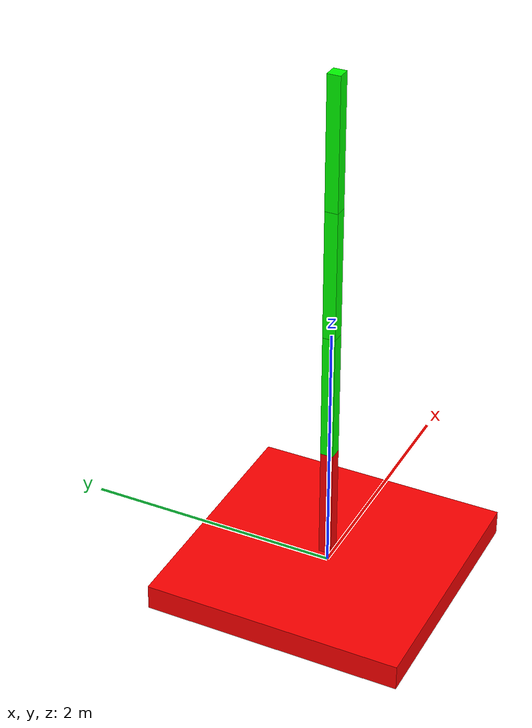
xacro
<?xml version="1.0"?>
<robot name="simple_robot" xmlns:xacro="http://www.ros.org/wiki/xacro">

        <xacro:include filename="$(find robotic_arm)/model/gazebo.xacro" />
        <xacro:include filename="$(find robotic_arm)/model/parameters.xacro" />

        <link name="base_link">
                <visual>
                        <geometry>
                                <box size="${chassis_length} ${chassis_width} ${chassis_height}"/>
                        </geometry>
                        <origin xyz="0 0 0" rpy="0 0 0"/>
                        <material name="red"/>
                </visual>

                <collision>
                        <geometry>
                                <box size="${chassis_length} ${chassis_width} ${chassis_height}"/>
                        </geometry>
                        <origin xyz="0 0 0" rpy="0 0 0"/>
                        <material name="red"/>
                </collision>

                <xacro:chassis_inertia />
        </link>

        <link name="first_arm">
                <visual>
                        <geometry>
                                <box size="${arm_length} ${arm_width} ${arm_height}" />
                        </geometry>
                        <origin xyz="0 0 0" rpy="0 0 0" />
                        <material name="red" />
                </visual>

                <collision>
                        <geometry>
                                <box size="${arm_length} ${arm_width} ${arm_height}" />
                        </geometry>
                        <origin xyz="0 0 0" rpy="0 0 0" />
                        <material name="red"/>
                </collision>

                <xacro:arm_inertia />
        </link>

        <joint name="first_arm_joint" type="revolute">
                <parent link="base_link" />
                <child link="first_arm" />
                <origin xyz="0 0 ${arm_height/2}" rpy="0 0 0"/>
                <axis xyz="0 0 1"/>
                <limit effort="5000" velocity="10" lower="${-pi}" upper="${pi}"/>
                <dynamics damping="1.0" friction="1.0"/>
        </joint>

        <link name="second_arm">
                <visual>
                        <geometry>
                                <box size="${arm_length} ${arm_width} ${arm_height}" />
                        </geometry>
                        <origin xyz="0 0 ${arm_height/2}" rpy="0 0 0" />
                        <material name="green" />
                </visual>

                <collision>
                        <geometry>
                                <box size="${arm_length} ${arm_width} ${arm_height}" />
                        </geometry>
                        <origin xyz="0 0 ${arm_height/2}" rpy="0 0 0" />
                        <material name="green" />
                </collision>

                <xacro:arm_inertia />
        </link>

        <joint name="second_arm_joint" type="revolute">
                <parent link="first_arm" />
                <child link="second_arm" />
                <origin xyz="0 0 ${arm_height/2}" rpy="0 0 0"/>
                <axis xyz="1 0 0"/>
                <limit effort="5000" velocity="10" lower="${-pi/2}" upper="${pi/2}"/>
                <dynamics damping="1.0" friction="1.0"/>
        </joint>

        <link name="third_arm">
                <visual>
                        <geometry>
                                <box size="${arm_length} ${arm_width} ${arm_height}" />
                        </geometry>
                        <origin xyz="0 0 ${arm_height/2}" rpy="0 0 0" />
                        <material name="green" />
                </visual>

                <collision>
                        <geometry>
                                <box size="${arm_length} ${arm_width} ${arm_height}" />
                        </geometry>
                        <origin xyz="0 0 ${arm_height/2}" rpy="0 0 0" />
                        <material name="green" />
                </collision>

                <xacro:arm_inertia />
        </link>

        <joint name="third_arm_joint" type="revolute">
                <parent link="second_arm" />
                <child link="third_arm" />
                <origin xyz="0 0 ${arm_height}" rpy="0 0 0"/>
                <axis xyz="-1 0 0"/>
                <limit effort="5000" velocity="10" lower="${-pi}" upper="${pi/2}"/>
                <dynamics damping="1.0" friction="1.0"/>
        </joint>

        <link name="fourth_arm">
                <visual>
                        <geometry>
                                <box size="${arm_length} ${arm_width} ${arm_height}" />
                        </geometry>
                        <origin xyz="0 0 ${arm_height/2}" rpy="0 0 0" />
                        <material name="green" />
                </visual>

                <collision>
                        <geometry>
                                <box size="${arm_length} ${arm_width} ${arm_height}" />
                        </geometry>
                        <origin xyz="0 0 ${arm_height/2}" rpy="0 0 0" />
                        <material name="green" />
                </collision>

                <xacro:arm_inertia />
        </link>

        <joint name="fourth_arm_joint" type="revolute">
                <parent link="third_arm" />
                <child link="fourth_arm" />
                <origin xyz="0 0 ${arm_height}" rpy="0 0 0"/>
                <axis xyz="-1 0 0"/>
                <limit effort="5000" velocity="10" lower="${-pi/2}" upper="${pi/2}"/>
                <dynamics damping="1.0" friction="1.0"/>
        </joint>

        <!-- ROS2_CONTROL -->

        <ros2_control name="RobotController" type="system">

                <hardware>
                        <plugin>robotic_arm_hardware/ArmHardwareInterface</plugin>
                </hardware>

                <!-- 1:[-pi;pi] 2:[-pi/2;pi/2] 3:[-pi;pi/2] 4:[-pi/2;pi/2] -->

                <joint name="first_arm_joint">
                        <command_interface name="position"/>
                        <state_interface name="position"/>
                </joint>

                <joint name="second_arm_joint">
                        <command_interface name="position"/>
                        <state_interface name="position"/>
                </joint>

                <joint name="third_arm_joint">
                        <command_interface name="position"/>
                        <state_interface name="position"/>
                </joint>

                <joint name="fourth_arm_joint">
                        <command_interface name="position"/>
                        <state_interface name="position"/>
                </joint>

        </ros2_control>

</robot>

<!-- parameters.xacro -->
<robot xmlns:xacro="http://www.ros.org/wiki/xacro">

<xacro:property name="SCALE_FACTOR" value="1" />

<xacro:property name="chassis_length" value="${2*SCALE_FACTOR}" />
<xacro:property name="chassis_width" value="${2*SCALE_FACTOR}" />
<xacro:property name="chassis_height" value="${0.2*SCALE_FACTOR}" />

<xacro:property name="chassis_density" value="271.0"/>
<xacro:property name="chassis_mass" value="${chassis_density * (chassis_length * chassis_width * chassis_height)}"/>

<xacro:property name="Ix_chassis" value="${(1/12)*chassis_mass*(chassis_width*chassis_width+chassis_height*chassis_height)}" />
<xacro:property name="Iy_chassis" value="${(1/12)*chassis_mass*(chassis_length*chassis_length+chassis_width*chassis_width)}" />
<xacro:property name="Iz_chassis" value="${(1/12)*chassis_mass*(chassis_length*chassis_length+chassis_height*chassis_height)}" />

<xacro:macro name="chassis_inertia">
        <inertial>
                <origin xyz="0 0 0" rpy="0 0 0"/>
                <mass value="${chassis_mass}"/>
                <inertia ixx="${Ix_chassis}" ixy="0.0" ixz="0.0" iyy="${Iy_chassis}" iyz="0" izz="${Iz_chassis}" />
        </inertial>
</xacro:macro>

<xacro:property name="arm_length" value="${0.1*SCALE_FACTOR}" />
<xacro:property name="arm_width" value="${0.1*SCALE_FACTOR}" />
<xacro:property name="arm_height" value="${1*SCALE_FACTOR}" />

<xacro:property name="arm_density" value="271.0"/>
<xacro:property name="arm_mass" value="${arm_density * (arm_length * arm_width * arm_height)}"/>

<xacro:property name="Ix_body" value="${(1/12)*arm_mass*(arm_width*arm_width+arm_height*arm_height)}" />
<xacro:property name="Iy_body" value="${(1/12)*arm_mass*(arm_length*arm_length+arm_width*arm_width)}" />
<xacro:property name="Iz_body" value="${(1/12)*arm_mass*(arm_length*arm_length+arm_height*arm_height)}" />

<xacro:macro name="arm_inertia">
        <inertial>
        <origin rpy="0 0 0" xyz="0 0 ${arm_height/2}"/>
        <mass value="${arm_mass}"/>
        <inertia ixx="${Ix_body}" ixy="0.0" ixz="0.0" iyy="${Iy_body}" iyz="0" izz="${Iz_body}" />
        </inertial>
</xacro:macro>

<xacro:property name="little_Ix_body" value="${(1/12)*m*(arm_width*arm_width+(arm_height/2)*(arm_height/2))}" />
<xacro:property name="little_Iy_body" value="${(1/12)*m*(arm_length*arm_length+arm_width*arm_width)}" />
<xacro:property name="little_Iz_body" value="${(1/12)*m*(arm_length*arm_length+(arm_height/2)*(arm_height/2))}" />
<xacro:macro name="little_arm_inertia">
        <inertial>
        <origin rpy="0 0 0" xyz="0 0 ${arm_height/4}"/>
        <mass value="${arm_mass/2}"/>
        <inertia ixx="${Ix_body}" ixy="0.0" ixz="0.0" iyy="${Iy_body}" iyz="0" izz="${Iz_body}" />
        </inertial>
</xacro:macro>

<material name="blue">
        <color rgba="0 0 1 1"/>
</material>

<material name="red">
        <color rgba="1 0 0 1"/>
</material>

<material name="green">
        <color rgba="0 1 0 1"/>
</material>

<material name="yellow">
        <color rgba="1 1 0 1"/>
</material>

<material name="magenta">
        <color rgba="1 0 1 1" />
</material>

<material name="cyan">
        <color rgba="0 1 1 1" />
</material>

<material name="white">
        <color rgba="1 1 1 1" />
</material>

</robot>
